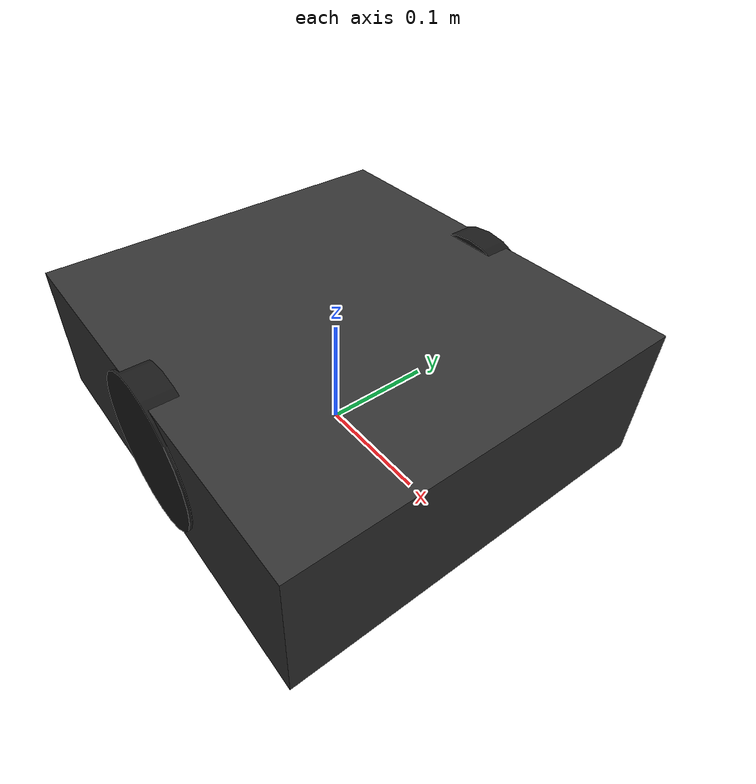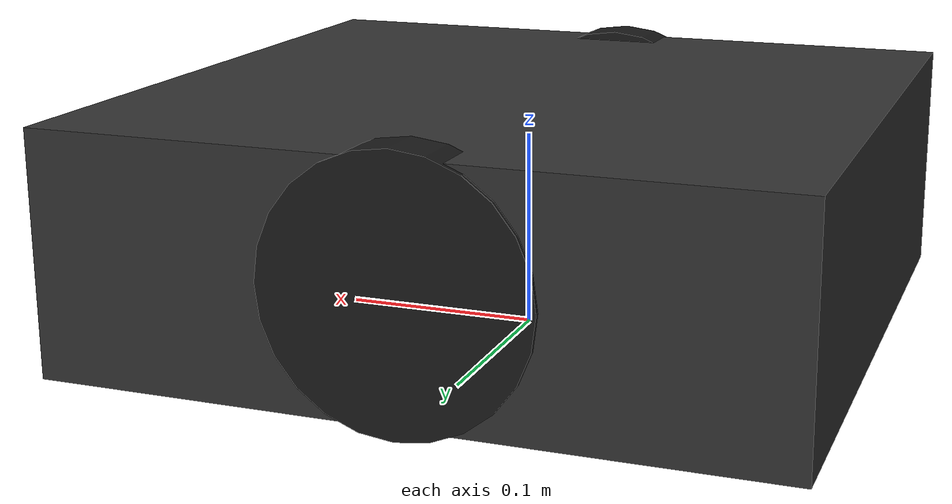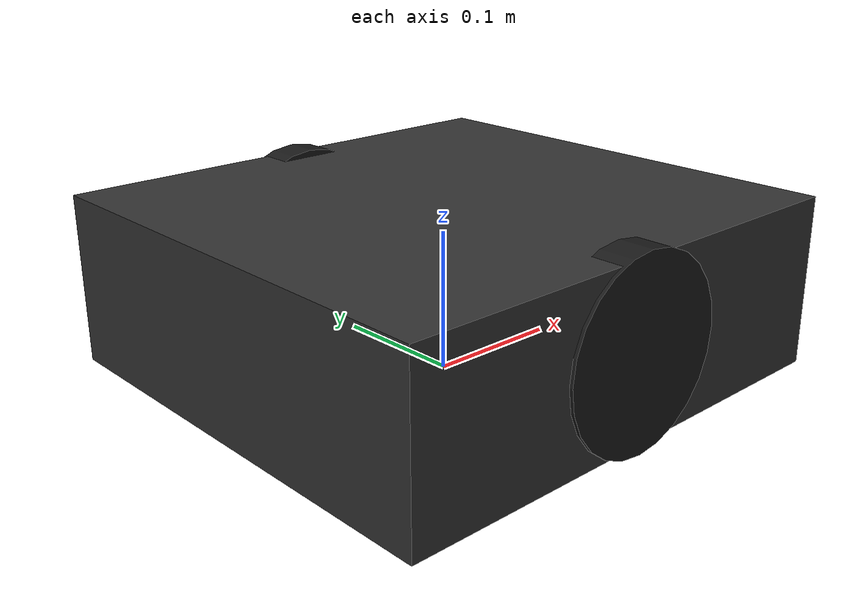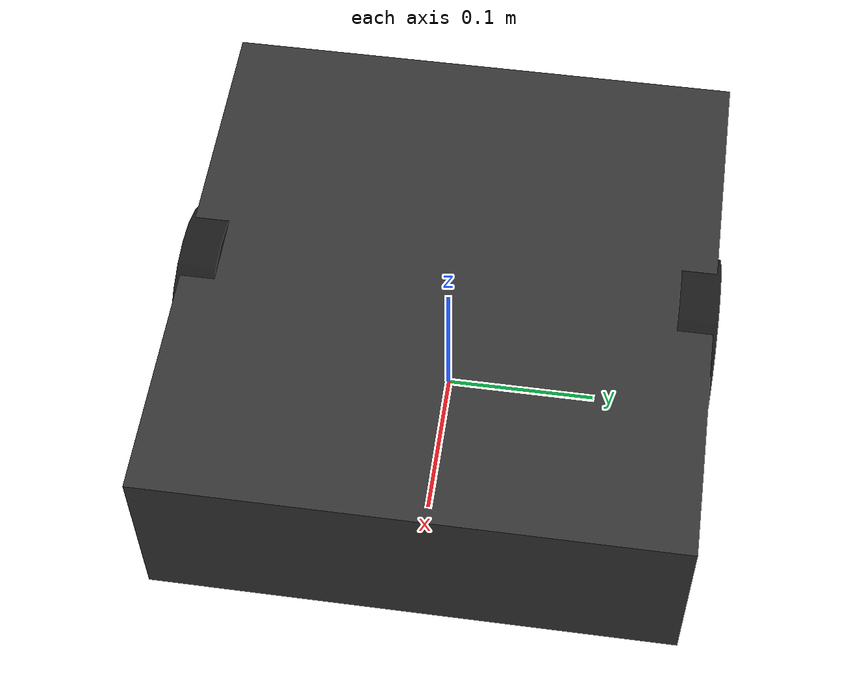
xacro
<?xml version="1.0"?>
<robot name="mobile_base" xmlns:xacro="http://www.ros.org/wiki/xacro">

  <!-- Properties                                                    -->
  <xacro:property name="wheel_base"    value="0.32"/>
  <xacro:property name="wheel_radius"  value="0.065"/>
  <xacro:property name="wheel_width"   value="0.025"/>
  <xacro:property name="chassis_l"     value="0.36"/>
  <xacro:property name="chassis_w"     value="0.34"/>
  <xacro:property name="chassis_h"     value="0.12"/>
  <xacro:property name="chassis_mass"  value="6.0"/>    <!-- kg -->
  <xacro:property name="wheel_mass"    value="0.3"/>
  <xacro:property name="pi"            value="3.14159265358979"/>

  <!-- Inertia macros                                                -->
  <xacro:macro name="box_inertia" params="m l w h">
    <inertia
      ixx="${m*(w*w+h*h)/12}" ixy="0" ixz="0"
      iyy="${m*(l*l+h*h)/12}" iyz="0"
      izz="${m*(l*l+w*w)/12}"/>
  </xacro:macro>

  <xacro:macro name="cylinder_inertia" params="m r h">
    <inertia
      ixx="${m*(3*r*r+h*h)/12}" ixy="0" ixz="0"
      iyy="${m*(3*r*r+h*h)/12}" iyz="0"
      izz="${m*r*r/2}"/>
  </xacro:macro>

  <!-- Base footprint (virtual frame at ground level)               -->
  <link name="base_footprint"/>
  <joint name="base_footprint_joint" type="fixed">
    <parent link="base_footprint"/>
    <child  link="base_link"/>
    <origin xyz="0 0 ${wheel_radius}" rpy="0 0 0"/>
  </joint>

  <!-- Base link (chassis)                                           -->
  <link name="base_link">
    <visual>
      <geometry>
        <box size="${chassis_l} ${chassis_w} ${chassis_h}"/>
      </geometry>
      <material name="dark_grey">
        <color rgba="0.2 0.2 0.2 1.0"/>
      </material>
    </visual>
    <collision>
      <geometry>
        <box size="${chassis_l} ${chassis_w} ${chassis_h}"/>
      </geometry>
    </collision>
    <inertial>
      <mass value="${chassis_mass}"/>
      <xacro:box_inertia m="${chassis_mass}" l="${chassis_l}" w="${chassis_w}" h="${chassis_h}"/>
    </inertial>
  </link>

  <!-- Drive wheels                                                  -->
  <xacro:macro name="drive_wheel" params="side reflect">
    <link name="${side}_wheel">
      <visual>
        <geometry>
          <cylinder radius="${wheel_radius}" length="${wheel_width}"/>
        </geometry>
        <material name="black">
          <color rgba="0.1 0.1 0.1 1.0"/>
        </material>
      </visual>
      <collision>
        <geometry>
          <cylinder radius="${wheel_radius}" length="${wheel_width}"/>
        </geometry>
      </collision>
      <inertial>
        <mass value="${wheel_mass}"/>
        <xacro:cylinder_inertia m="${wheel_mass}" r="${wheel_radius}" h="${wheel_width}"/>
      </inertial>
    </link>
    <joint name="${side}_wheel_joint" type="continuous">
      <parent link="base_link"/>
      <child  link="${side}_wheel"/>
      <origin xyz="0 ${reflect * wheel_base/2} 0" rpy="${-pi/2} 0 0"/>
      <axis xyz="0 0 1"/>
    </joint>
  </xacro:macro>

  <xacro:drive_wheel side="left"  reflect="1"/>
  <xacro:drive_wheel side="right" reflect="-1"/>

  <!-- IMU link                                                      -->
  <link name="imu_link">
    <inertial>
      <mass value="0.01"/>
      <inertia ixx="1e-6" ixy="0" ixz="0" iyy="1e-6" iyz="0" izz="1e-6"/>
    </inertial>
  </link>
  <joint name="imu_joint" type="fixed">
    <parent link="base_link"/>
    <child  link="imu_link"/>
    <origin xyz="0 0 ${chassis_h/2}" rpy="0 0 0"/>
  </joint>

  <!-- Include sensor mount (LiDAR + camera)                         -->
  <!-- xacro:include filename="$(find from_signal_to_system)/urdf/sensor_mount.urdf.xacro" -->

</robot>
